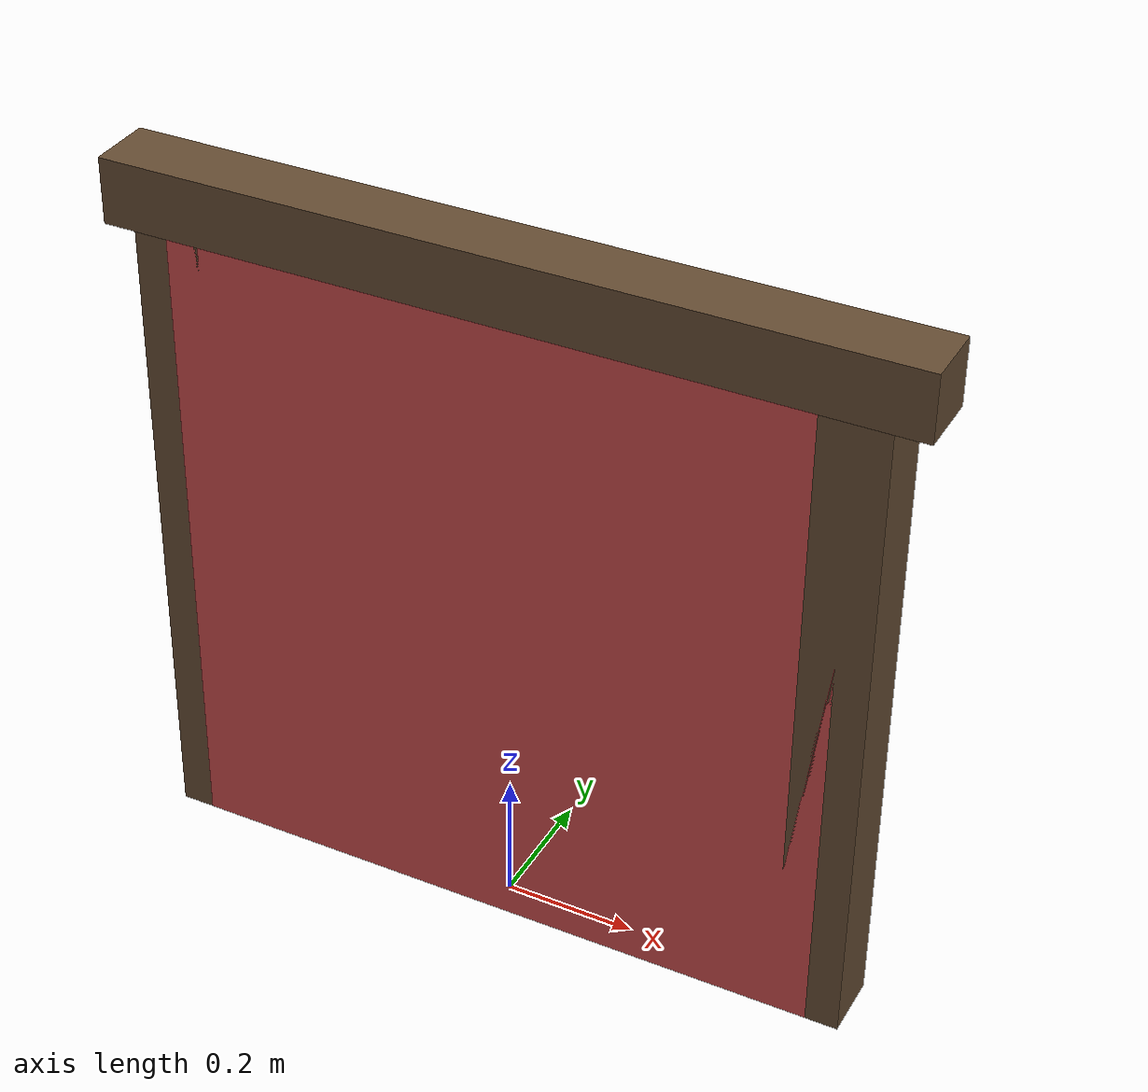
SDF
<?xml version="1.0" ?>
<sdf version="1.6">
  <model name="exit_door">
    <static>false</static>

    <!-- Rigid door frame that stays fixed to the world -->
    <link name="door_frame">
      <pose>0 0 0 0 0 0</pose>
      <inertial>
        <mass>10.0</mass>
        <inertia>
          <ixx>1.0</ixx>
          <ixy>0</ixy>
          <ixz>0</ixz>
          <iyy>1.0</iyy>
          <iyz>0</iyz>
          <izz>1.0</izz>
        </inertia>
      </inertial>

      <!-- Left frame upright -->
      <collision name="frame_left_collision">
        <pose>-0.5 0 0.5 0 0 0</pose>
        <geometry>
          <box>
            <size>0.1 0.1 1.0</size>
          </box>
        </geometry>
      </collision>
      <visual name="frame_left_visual">
        <pose>-0.5 0 0.5 0 0 0</pose>
        <geometry>
          <box>
            <size>0.1 0.1 1.0</size>
          </box>
        </geometry>
        <material>
          <ambient>0.4 0.3 0.2 1</ambient>
          <diffuse>0.4 0.3 0.2 1</diffuse>
          <specular>0.1 0.1 0.1 1</specular>
        </material>
      </visual>

      <!-- Right frame upright -->
      <collision name="frame_right_collision">
        <pose>0.5 0 0.5 0 0 0</pose>
        <geometry>
          <box>
            <size>0.1 0.1 1.0</size>
          </box>
        </geometry>
      </collision>
      <visual name="frame_right_visual">
        <pose>0.5 0 0.5 0 0 0</pose>
        <geometry>
          <box>
            <size>0.1 0.1 1.0</size>
          </box>
        </geometry>
        <material>
          <ambient>0.4 0.3 0.2 1</ambient>
          <diffuse>0.4 0.3 0.2 1</diffuse>
          <specular>0.1 0.1 0.1 1</specular>
        </material>
      </visual>

      <!-- Frame top beam -->
      <collision name="frame_top_collision">
        <pose>0 0 1.05 0 0 0</pose>
        <geometry>
          <box>
            <size>1.2 0.1 0.1</size>
          </box>
        </geometry>
      </collision>
      <visual name="frame_top_visual">
        <pose>0 0 1.05 0 0 0</pose>
        <geometry>
          <box>
            <size>1.2 0.1 0.1</size>
          </box>
        </geometry>
        <material>
          <ambient>0.4 0.3 0.2 1</ambient>
          <diffuse>0.4 0.3 0.2 1</diffuse>
          <specular>0.1 0.1 0.1 1</specular>
        </material>
      </visual>
    </link>

    <!-- Sliding door panel -->
    <link name="door_panel">
      <pose>0 -0.025 0.5 0 0 0</pose>
      <inertial>
        <mass>4.0</mass>
        <inertia>
          <ixx>1.3367</ixx>
          <ixy>0</ixy>
          <ixz>0</ixz>
          <iyy>2.6667</iyy>
          <iyz>0</iyz>
          <izz>1.3367</izz>
        </inertia>
      </inertial>
      <collision name="panel_collision">
        <geometry>
          <box>
            <size>1.0 0.05 1.0</size>
          </box>
        </geometry>
      </collision>
      <visual name="panel_visual">
        <geometry>
          <box>
            <size>1.0 0.05 1.0</size>
          </box>
        </geometry>
        <material>
          <ambient>0.6 0.2 0.2 1</ambient>
          <diffuse>0.8 0.3 0.3 1</diffuse>
          <specular>0.2 0.2 0.2 1</specular>
        </material>
      </visual>
      <!-- White backing plate for the ArUco marker -->
      <visual name="marker_backing_visual">
        <pose>0 0.0275 0.0 0 0 0</pose>
        <geometry>
          <box>
            <size>0.15 0.005 0.15</size>
          </box>
        </geometry>
        <material>
          <ambient>0.95 0.95 0.95 1</ambient>
          <diffuse>0.98 0.98 0.98 1</diffuse>
          <specular>0.3 0.3 0.3 1</specular>
        </material>
      </visual>
      <!-- ArUco marker visual attached to the door panel (corridor-facing side) -->
      <visual name="aruco_marker_visual">
        <pose>0 0.0305 0.0 0 0 0</pose>
        <geometry>
          <box>
            <size>0.12 0.0005 0.12</size>
          </box>
        </geometry>
        <material>
          <ambient>1 1 1 1</ambient>
          <diffuse>1 1 1 1</diffuse>
          <specular>0.1 0.1 0.1 1</specular>
          <pbr>
            <metal>
              <albedo_map>model://exit_door/aruco_tag.png</albedo_map>
            </metal>
          </pbr>
        </material>
      </visual>
    </link>

    <!-- Fix the frame to the world so that only the panel moves -->
    <joint name="frame_world_fixed" type="fixed">
      <parent>world</parent>
      <child>door_frame</child>
    </joint>

    <!-- Prismatic joint for the sliding panel -->
    <joint name="door_slide" type="prismatic">
      <parent>door_frame</parent>
      <child>door_panel</child>
      <pose>0 0 1.0 0 0 0</pose>
      <axis>
        <xyz>1 0 0</xyz>
        <use_parent_model_frame>true</use_parent_model_frame>
        <limit>
          <lower>0.0</lower>
          <upper>0.9</upper>
        </limit>
        <dynamics>
          <damping>4.5</damping>
          <friction>0.3</friction>
        </dynamics>
      </axis>
    </joint>

    <!-- Gazebo system plugin that listens to /door_slide/cmd_pos and applies the desired offset -->
    <plugin filename="ignition-gazebo-joint-position-controller-system"
            name="ignition::gazebo::systems::JointPositionController">
      <joint_name>door_slide</joint_name>
      <topic>/door_slide/cmd_pos</topic>
      <p_gain>4.0</p_gain>
      <i_gain>0.5</i_gain>
      <d_gain>0.5</d_gain>
    </plugin>

  </model>
</sdf>
